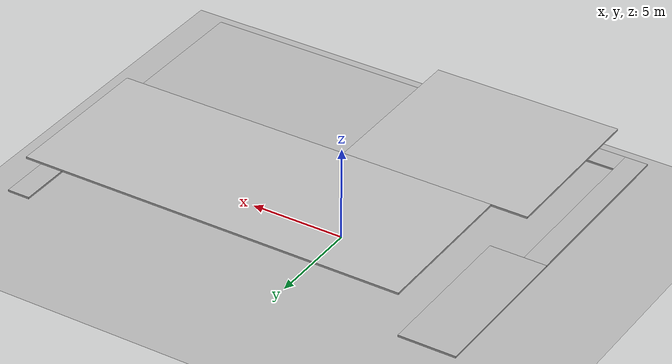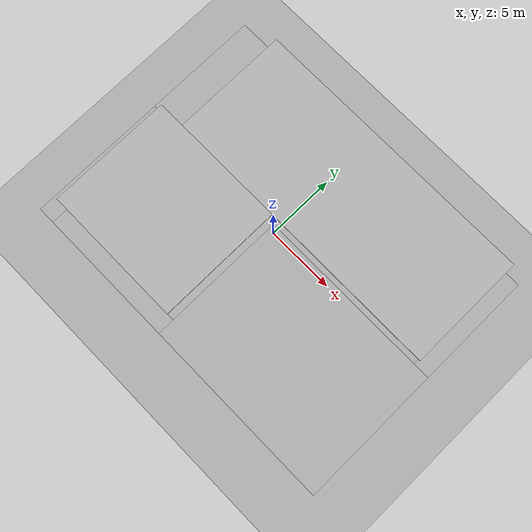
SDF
<sdf version="1.6">
 <world name="default">
  <model name="ground_plane">
   <static>1</static>
   <link name="link">
    <collision name="collision">
     <geometry><plane><normal>0 0 1</normal><size>30 25</size></plane></geometry>
     <surface><friction><ode><mu>100</mu><mu2>50</mu2></ode></friction></surface>
    </collision>
    <visual name="visual">
     <cast_shadows>0</cast_shadows>
     <geometry><plane><normal>0 0 1</normal><size>30 25</size></plane></geometry>
     <material>
      <script>
       <uri>model://ground/materials/scripts</uri>
       <uri>model://ground/materials/textures</uri>
       <name>ground</name>
      </script>
      <ambient>0.6 0.6 0.6 1</ambient>
      <diffuse>0.7 0.7 0.7 1</diffuse>
      <specular>0.2 0.2 0.2 1</specular>
     </material>
    </visual>
   </link>
  </model>
  <model name="celling">
   <static>true</static>
   <link name="link_1">
    <pose>6.75 -4.95 2.5 0 -0 0</pose>
    <visual name="visual">
     <geometry><box><size>13.5 9.9 0.1</size></box></geometry>
     <material>
      <script>
       <uri>model://celling/materials/scripts</uri>
       <uri>model://celling/materials/textures</uri>
       <name>celling</name>
      </script>
      <ambient>0.2 0.2 0.2 1</ambient>
      <diffuse>0.7 0.7 0.7 1</diffuse>
      <specular>0 0 0 1</specular>
      <emissive>0 0 0 1</emissive>
     </material>
     <transparency>0.1</transparency>
     <cast_shadows>0</cast_shadows>
    </visual>
   </link>
   <link name="link_2">
    <pose>12.9 4.1 2.5 0 -0 0</pose>
    <visual name="visual">
     <geometry><box><size>1.2 8.2 0.1</size></box></geometry>
     <material>
      <script>
       <uri>model://celling/materials/scripts</uri>
       <uri>model://celling/materials/textures</uri>
       <name>celling</name>
      </script>
      <ambient>0.2 0.2 0.2 1</ambient>
      <diffuse>0.7 0.7 0.7 1</diffuse>
      <specular>0 0 0 1</specular>
      <emissive>0 0 0 1</emissive>
     </material>
     <transparency>0.1</transparency>
     <cast_shadows>0</cast_shadows>
    </visual>
   </link>
   <link name="link_3">
    <pose>-9.6 4.1 2.5 0 -0 0</pose>
    <visual name="visual">
     <geometry><box><size>3 8.2 0.1</size></box></geometry>
     <material>
      <script>
       <uri>model://celling/materials/scripts</uri>
       <uri>model://celling/materials/textures</uri>
       <name>celling</name>
      </script>
      <ambient>0.2 0.2 0.2 1</ambient>
      <diffuse>0.7 0.7 0.7 1</diffuse>
      <specular>0 0 0 1</specular>
      <emissive>0 0 0 1</emissive>
     </material>
     <transparency>0.1</transparency>
     <cast_shadows>0</cast_shadows>
    </visual>
   </link>
   <link name="link_4">
    <pose>-10.5 -4.95 2.5 0 -0 0</pose>
    <visual name="visual">
     <geometry><box><size>1.2 9.9 0.1</size></box></geometry>
     <material>
      <script>
       <uri>model://celling/materials/scripts</uri>
       <uri>model://celling/materials/textures</uri>
       <name>celling</name>
      </script>
      <ambient>0.2 0.2 0.2 1</ambient>
      <diffuse>0.7 0.7 0.7 1</diffuse>
      <specular>0 0 0 1</specular>
      <emissive>0 0 0 1</emissive>
     </material>
     <transparency>0.1</transparency>
     <cast_shadows>0</cast_shadows>
    </visual>
   </link>
   <link name="link_5">
    <pose>-4.95 -9.3 2.5 0 -0 0</pose>
    <visual name="visual">
     <geometry><box><size>9.9 1.2 0.1</size></box></geometry>
     <material>
      <script>
       <uri>model://celling/materials/scripts</uri>
       <uri>model://celling/materials/textures</uri>
       <name>celling</name>
      </script>
      <ambient>0.2 0.2 0.2 1</ambient>
      <diffuse>0.7 0.7 0.7 1</diffuse>
      <specular>0 0 0 1</specular>
      <emissive>0 0 0 1</emissive>
     </material>
     <transparency>0.1</transparency>
     <cast_shadows>0</cast_shadows>
    </visual>
   </link>
   <static>0</static>
  </model>
  <model name="sky1">
   <static>true</static>
   <link name="link_1">
    <pose>-5.05 -4.35 4.8 0 -0 0</pose>
    <visual name="visual">
     <geometry><box><size>9.9 8.7 0.1</size></box></geometry>
     <material>
      <lighting>1</lighting>
      <script>
       <uri>model://sky/materials/scripts</uri>
       <uri>model://sky/materials/textures</uri>
       <name>sky</name>
      </script>
     </material>
     <transparency>0.1</transparency>
     <cast_shadows>0</cast_shadows>
    </visual>
   </link>
   <link name="link_2">
    <pose>2.1 4.1 4.8 0 -0 0</pose>
    <visual name="visual">
     <geometry><box><size>20.4 8.2 0.1</size></box></geometry>
     <material>
      <lighting>1</lighting>
      <script>
       <uri>model://sky/materials/scripts</uri>
       <uri>model://sky/materials/textures</uri>
       <name>sky</name>
      </script>
     </material>
     <transparency>0.1</transparency>
     <cast_shadows>0</cast_shadows>
    </visual>
   </link>
   <static>0</static>
  </model>
 </world>
</sdf>
